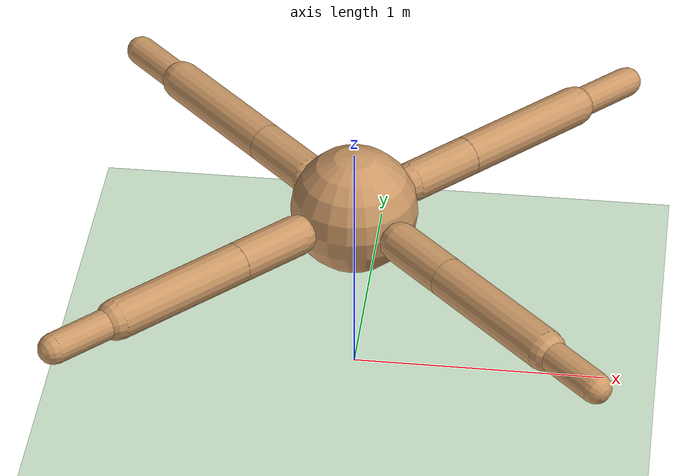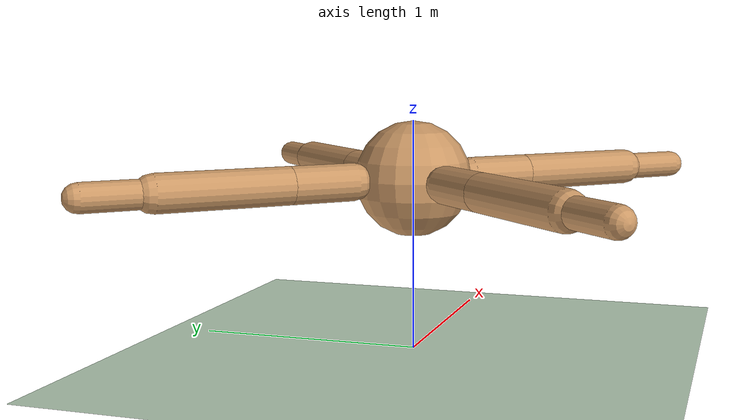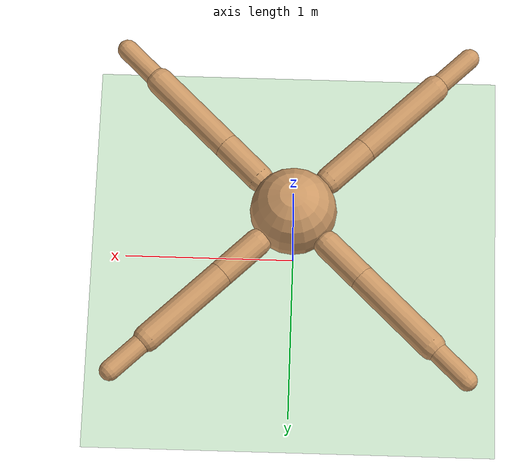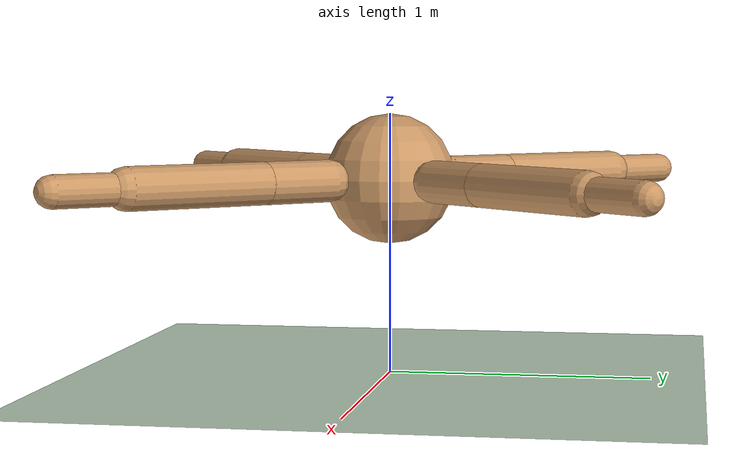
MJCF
<mujoco model="ant">
  <compiler angle="degree" coordinate="local" inertiafromgeom="true"/>
  <option integrator="RK4" timestep="0.01"/>
  <default>
    <joint armature="1" damping="1" limited="true"/>
    <geom conaffinity="0" condim="3" density="5.0" friction="1 0.5 0.5" margin="0.01" rgba="0.8 0.6 0.4 1"/>
  </default>
  <asset>
    <texture builtin="gradient" height="100" rgb1="1 1 1" rgb2="0 0 0" type="skybox" width="100"/>
    <texture builtin="flat" height="1278" mark="cross" markrgb="1 1 1" name="texgeom" random="0.01" rgb1="0.8 0.6 0.4" rgb2="0.8 0.6 0.4" type="cube" width="127"/>
    <texture builtin="checker" height="100" name="texplane" rgb1="0 0 0" rgb2="0.8 0.8 0.8" type="2d" width="100"/>
    <material name="MatPlane" reflectance="0.5" shininess="1" specular="1" texrepeat="60 60" texture="texplane"/>
    <material name="geom" texture="texgeom" texuniform="true"/>
  </asset>
  <worldbody>
    <light cutoff="100" diffuse="1 1 1" dir="-0 0 -1.3" directional="true" exponent="1" pos="0 0 1.3" specular=".1 .1 .1"/>
    <geom conaffinity="1" condim="3" material="MatPlane" name="floor" pos="0 0 0" rgba="0.8 0.9 0.8 1" size="40 40 40" type="plane"/>
    <body name="torso" pos="0 0 0.75">
      <geom name="torsoGeom" pos="0 0 0" size="0.25" type="sphere"/>
      <joint name="rootJoint" armature="0" damping="0" limited="false" margin="0.01" pos="0 0 0" type="free"/>

      <body name="aux_1" pos="0.2 0.2 0">
        <joint name="hip_1" axis="0 0 1" pos="0.0 0.0 0.0" range="-30 30" type="hinge"/>
        <geom name="legGeom_1" fromto="0.0 0.0 0.0 0.2 0.2 0.0" size="0.08" type="capsule"/>
        <body name="f_1" pos="0.2 0.2 0">
          <joint name="ankle_1" axis="-1 1 0" pos="0.0 0.0 0.0" range="30 70" type="hinge"/>
          <geom name="ankleGeom_1" fromto="0.0 0.0 0.0 0.4 0.4 0.0" size="0.08" type="capsule"/>
          <body name="toe_1" pos="0.4 0.4 0">
            <joint name="toe_1" axis="0 0 1" pos="0.0 0.0 0.0" range="-30 30" type="hinge"/>
            <geom name="toeGeom_1" fromto="0.0 0.0 0.0 0.2 0.2 0.0" size="0.06" type="capsule"/>
          </body>
        </body>
      </body>

      <body name="aux_2" pos="-0.2 0.2 0">
        <joint name="hip_2" axis="0 0 1" pos="0.0 0.0 0.0" range="-30 30" type="hinge"/>
        <geom name="legGeom_2" fromto="0.0 0.0 0.0 -0.2 0.2 0.0" size="0.08" type="capsule"/>
        <body name="f_2" pos="-0.2 0.2 0">
          <joint name="ankle_2" axis="1 1 0" pos="0.0 0.0 0.0" range="-70 -30" type="hinge"/>
          <geom name="ankleGeom_2" fromto="0.0 0.0 0.0 -0.4 0.4 0.0" size="0.08" type="capsule"/>
          <body name="toe_2" pos="-0.4 0.4 0">
            <joint name="toe_2" axis="0 0 1" pos="0.0 0.0 0.0" range="-30 30" type="hinge"/>
            <geom name="toeGeom_2" fromto="0.0 0.0 0.0 -0.2 0.2 0.0" size="0.06" type="capsule"/>
          </body>
        </body>
      </body>

      <body name="aux_3" pos="-0.2 -0.2 0">
        <joint name="hip_3" axis="0 0 1" pos="0.0 0.0 0.0" range="-30 30" type="hinge"/>
        <geom name="legGeom_3" fromto="0.0 0.0 0.0 -0.2 -0.2 0.0" size="0.08" type="capsule"/>
        <body name="f_3" pos="-0.2 -0.2 0">
          <joint name="ankle_3" axis="-1 1 0" pos="0.0 0.0 0.0" range="-70 -30" type="hinge"/>
          <geom name="ankleGeom_3" fromto="0.0 0.0 0.0 -0.4 -0.4 0.0" size="0.08" type="capsule"/>
          <body name="toe_3" pos="-0.4 -0.4 0">
            <joint name="toe_3" axis="0 0 1" pos="0.0 0.0 0.0" range="-30 30" type="hinge"/>
            <geom name="toeGeom_3" fromto="0.0 0.0 0.0 -0.2 -0.2 0.0" size="0.06" type="capsule"/>
          </body>
        </body>
      </body>

      <body name="aux_4" pos="0.2 -0.2 0">
        <joint name="hip_4" axis="0 0 1" pos="0.0 0.0 0.0" range="-30 30" type="hinge"/>
        <geom name="legGeom_4" fromto="0.0 0.0 0.0 0.2 -0.2 0.0" size="0.08" type="capsule"/>
        <body name="f_4" pos="0.2 -0.2 0">
          <joint name="ankle_4" axis="1 1 0" pos="0.0 0.0 0.0" range="30 70" type="hinge"/>
          <geom name="ankleGeom_4" fromto="0.0 0.0 0.0 0.4 -0.4 0.0" size="0.08" type="capsule"/>
          <body name="toe_4" pos="0.4 -0.4 0">
            <joint name="toe_4" axis="0 0 1" pos="0.0 0.0 0.0" range="-30 30" type="hinge"/>
            <geom name="toeGeom_4" fromto="0.0 0.0 0.0 0.2 -0.2 0.0" size="0.06" type="capsule"/>
          </body>
        </body>
      </body>

    </body>
  </worldbody>
  <actuator>
    <motor ctrllimited="true" ctrlrange="-1.0 1.0" joint="hip_1" gear="150"/>
    <motor ctrllimited="true" ctrlrange="-1.0 1.0" joint="ankle_1" gear="150"/>
    <motor ctrllimited="true" ctrlrange="-1.0 1.0" joint="toe_1" gear="100"/>
    <motor ctrllimited="true" ctrlrange="-1.0 1.0" joint="hip_2" gear="150"/>
    <motor ctrllimited="true" ctrlrange="-1.0 1.0" joint="ankle_2" gear="150"/>
    <motor ctrllimited="true" ctrlrange="-1.0 1.0" joint="toe_2" gear="100"/>
    <motor ctrllimited="true" ctrlrange="-1.0 1.0" joint="hip_3" gear="150"/>
    <motor ctrllimited="true" ctrlrange="-1.0 1.0" joint="ankle_3" gear="150"/>
    <motor ctrllimited="true" ctrlrange="-1.0 1.0" joint="toe_3" gear="100"/>
    <motor ctrllimited="true" ctrlrange="-1.0 1.0" joint="hip_4" gear="150"/>
    <motor ctrllimited="true" ctrlrange="-1.0 1.0" joint="ankle_4" gear="150"/>
    <motor ctrllimited="true" ctrlrange="-1.0 1.0" joint="toe_4" gear="100"/>
  </actuator>
</mujoco>
